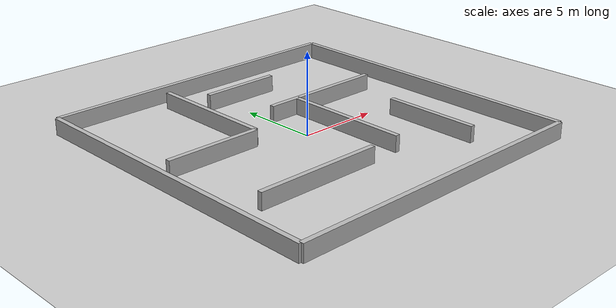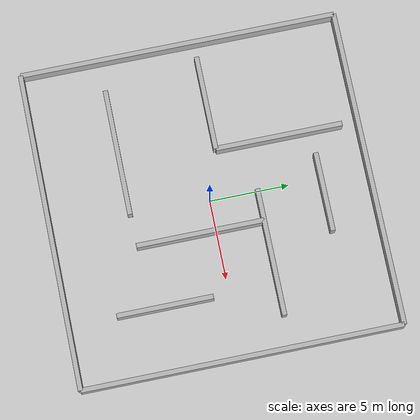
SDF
<?xml version="1.0" ?>
<sdf version="1.6">
<world name="maze_world">

  <include>
    <uri>model://sun</uri>
  </include>

  <include>
    <uri>model://ground_plane</uri>
  </include>

  <!-- 外围墙 -->

  <model name="wall_north">
    <static>true</static>
    <link name="link">
      <collision name="collision">
        <geometry><box><size>20 0.3 1</size></box></geometry>
      </collision>
      <visual name="visual">
        <geometry><box><size>20 0.3 1</size></box></geometry>
      </visual>
    </link>
    <pose>0 10 0.5 0 0 0</pose>
  </model>

  <model name="wall_south">
    <static>true</static>
    <link name="link">
      <collision name="collision">
        <geometry><box><size>20 0.3 1</size></box></geometry>
      </collision>
      <visual name="visual">
        <geometry><box><size>20 0.3 1</size></box></geometry>
      </visual>
    </link>
    <pose>0 -10 0.5 0 0 0</pose>
  </model>

  <model name="wall_east">
    <static>true</static>
    <link name="link">
      <collision name="collision">
        <geometry><box><size>0.3 20 1</size></box></geometry>
      </collision>
      <visual name="visual">
        <geometry><box><size>0.3 20 1</size></box></geometry>
      </visual>
    </link>
    <pose>10 0 0.5 0 0 0</pose>
  </model>

  <model name="wall_west">
    <static>true</static>
    <link name="link">
      <collision name="collision">
        <geometry><box><size>0.3 20 1</size></box></geometry>
      </collision>
      <visual name="visual">
        <geometry><box><size>0.3 20 1</size></box></geometry>
      </visual>
    </link>
    <pose>-10 0 0.5 0 0 0</pose>
  </model>

  <!-- 内部迷宫墙 -->

  <model name="maze_wall1">
    <static>true</static>
    <link name="link">
      <collision name="collision">
        <geometry><box><size>8 0.3 1</size></box></geometry>
      </collision>
      <visual name="visual">
        <geometry><box><size>8 0.3 1</size></box></geometry>
      </visual>
    </link>
    <pose>-4 -5 0.5 0 0 0</pose>
  </model>

  <model name="maze_wall2">
    <static>true</static>
    <link name="link">
      <collision name="collision">
        <geometry><box><size>0.3 8 1</size></box></geometry>
      </collision>
      <visual name="visual">
        <geometry><box><size>0.3 8 1</size></box></geometry>
      </visual>
    </link>
    <pose>2 -1 0.5 0 0 0</pose>
  </model>

  <model name="maze_wall3">
    <static>true</static>
    <link name="link">
      <collision name="collision">
        <geometry><box><size>8 0.3 1</size></box></geometry>
      </collision>
      <visual name="visual">
        <geometry><box><size>8 0.3 1</size></box></geometry>
      </visual>
    </link>
    <pose>4 3 0.5 0 0 0</pose>
  </model>

  <model name="maze_wall4">
    <static>true</static>
    <link name="link">
      <collision name="collision">
        <geometry><box><size>0.3 8 1</size></box></geometry>
      </collision>
      <visual name="visual">
        <geometry><box><size>0.3 8 1</size></box></geometry>
      </visual>
    </link>
    <pose>-3 5 0.5 0 0 0</pose>
  </model>

  <model name="maze_wall5">
    <static>true</static>
    <link name="link">
      <collision name="collision">
        <geometry><box><size>6 0.3 1</size></box></geometry>
      </collision>
      <visual name="visual">
        <geometry><box><size>6 0.3 1</size></box></geometry>
      </visual>
    </link>
    <pose>-6 1 0.5 0 0 0</pose>
  </model>

  <model name="maze_wall6">
    <static>true</static>
    <link name="link">
      <collision name="collision">
        <geometry><box><size>0.3 6 1</size></box></geometry>
      </collision>
      <visual name="visual">
        <geometry><box><size>0.3 6 1</size></box></geometry>
      </visual>
    </link>
    <pose>6 -4 0.5 0 0 0</pose>
  </model>

  <model name="maze_wall7">
    <static>true</static>
    <link name="link">
      <collision name="collision">
        <geometry><box><size>5 0.3 1</size></box></geometry>
      </collision>
      <visual name="visual">
        <geometry><box><size>5 0.3 1</size></box></geometry>
      </visual>
    </link>
    <pose>1 7 0.5 0 0 0</pose>
  </model>

</world>
</sdf>
